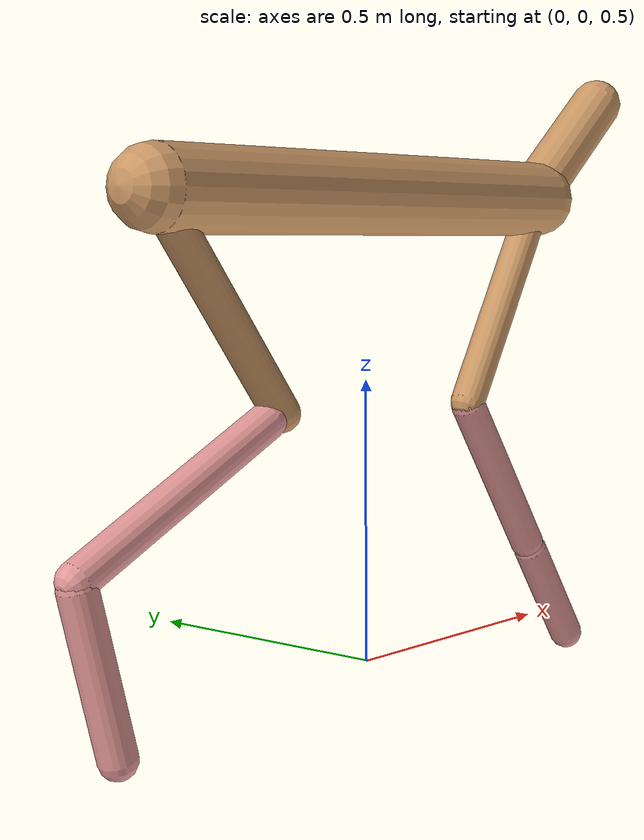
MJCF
<mujoco model="cheetah">
  <compiler angle="radian" coordinate="local" inertiafromgeom="true" settotalmass="14" />
  <default>
    <joint armature=".1" damping=".01" limited="true" solimplimit="0 .8 .03" solreflimit=".02 1" stiffness="8" />
    <geom conaffinity="0" condim="3" contype="1" friction="0.8 .1 .1" rgba="0.8 0.6 .4 1" solimp="0.0 0.8 0.01" solref="0.02 1" />
    <motor ctrllimited="true" ctrlrange="-1 1" />
  </default>
  <size nstack="300000" nuser_geom="1" />
  <option gravity="0 0 -9.81" timestep="0.01" />
  <worldbody>
    <body name="torso" pos="0.0 0.0 1.3232307754620694">
      <joint armature="0" axis="1 0 0" damping="0" limited="false" name="ignorex" pos="0 0 0" stiffness="0" type="slide" />
      <joint armature="0" axis="0 0 1" damping="0" limited="false" name="ignorez" pos="0 0 0" stiffness="0" type="slide" />
      <joint armature="0" axis="0 1 0" damping="0" limited="false" name="ignorey" pos="0 0 0" stiffness="0" type="hinge" />
      <geom fromto="-0.5 0.0 0.0 0.5183630220642721 0.0 0.0" name="torso" size="0.07143857148058974" type="capsule" />
      <geom axisangle="0 1 0 .87" name="head" pos="0.6183630220642721 0.0 0.1" size="0.04965493440805781 0.15" type="capsule" />

      <body name="bthigh" pos="-.5 0 0">
        <joint axis="0 1 0" damping="6" name="bthigh" pos="0 0 0" range="-.52 1.05" stiffness="240" type="hinge" />
        <geom axisangle="0 1 0 -3.8" name="bthigh" pos="0.14669374914604127 0.0 -0.19070187388985366" size="0.0322 0.22158344274745764" type="capsule" />
        <body name="bshin" pos="0.2533874982920825 0.0 -0.3714037477797073">
          <joint axis="0 1 0" damping="4.5" name="bshin" pos="0 0 0" range="-.785 .785" stiffness="180" type="hinge" />
          <geom axisangle="0 1 0 -2.03" name="bshin" pos="-0.21086032438659807 0.0 -0.10543016219329904" rgba="0.9 0.6 0.6 1" size="0.0322 0.22922425111805964" type="capsule" />
          <body name="bfoot" pos="-0.42172064877319615 0.0 -0.21086032438659807">
            <joint axis="0 1 0" damping="3" name="bfoot" pos="0 0 0" range="-.4 .785" stiffness="120" type="hinge" />
            <geom axisangle="0 1 0 -.27" name="bfoot" pos="0.04466924364997847 0.0 -0.14443055446826375" rgba="0.9 0.6 0.6 1" size="0.0322 0.14364719736731738" type="capsule" />
            <inertial mass="10" />
          </body>
        </body>
      </body>
      <body name="fthigh" pos="0.5183630220642721 0.0 0.0">
        <joint axis="0 1 0" damping="4.5" name="fthigh" pos="0 0 0" range="-1.5 0.8" stiffness="180" type="hinge" />
        <geom axisangle="0 1 0 .52" name="fthigh" pos="-0.1132211045326037 0.0 -0.19409332205589203" size="0.0322 0.21877811055447885" type="capsule" />
        <body name="fshin" pos="-0.2264422090652074 0.0 -0.38818664411178405">
          <joint axis="0 1 0" damping="3" name="fshin" pos="0 0 0" range="-1.2 1.1" stiffness="120" type="hinge" />
          <geom axisangle="0 1 0 -.6" name="fshin" pos="0.10502677433356414 0.0 -0.1454216875387811" rgba="0.9 0.6 0.6 1" size="0.0322 0.17436450916371996" type="capsule" />
          <body name="ffoot" pos="0.21005354866712828 0.0 -0.2908433750775622">
            <joint axis="0 1 0" damping="1.5" name="ffoot" pos="0 0 0" range="-3.1 -0.3" stiffness="60" type="hinge" />
            <geom axisangle="0 1 0 -.6" name="ffoot" pos="0.06941324444782263 0.0 -0.10797615802994631" rgba="0.9 0.6 0.6 1" size="0.0322 0.1151463739760415" type="capsule" />
            <inertial mass="10" />
          </body>
        </body>
      </body>
    </body>
  </worldbody>
  <actuator>
    <motor gear="120" joint="bthigh" name="bthigh" />
    <motor gear="90" joint="bshin" name="bshin" />
    <motor gear="60" joint="bfoot" name="bfoot" />
    <motor gear="120" joint="fthigh" name="fthigh" />
    <motor gear="60" joint="fshin" name="fshin" />
    <motor gear="30" joint="ffoot" name="ffoot" />
  </actuator>
</mujoco>
